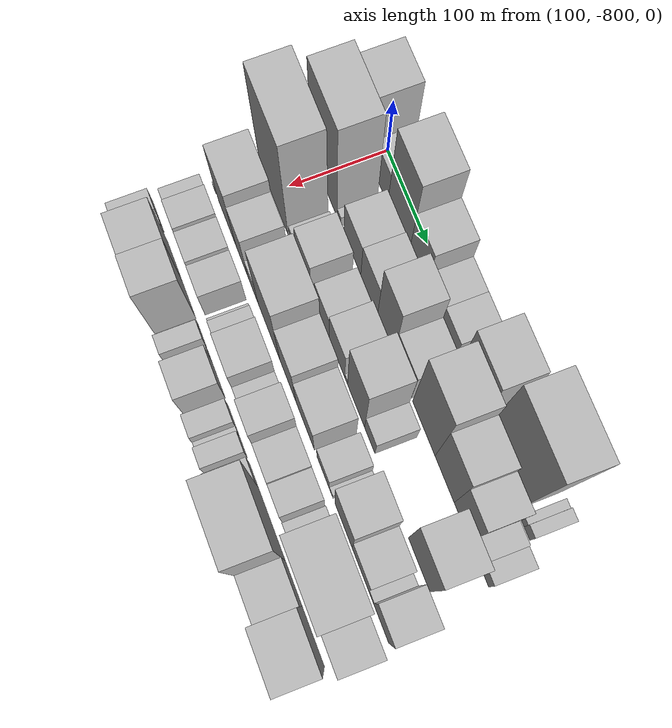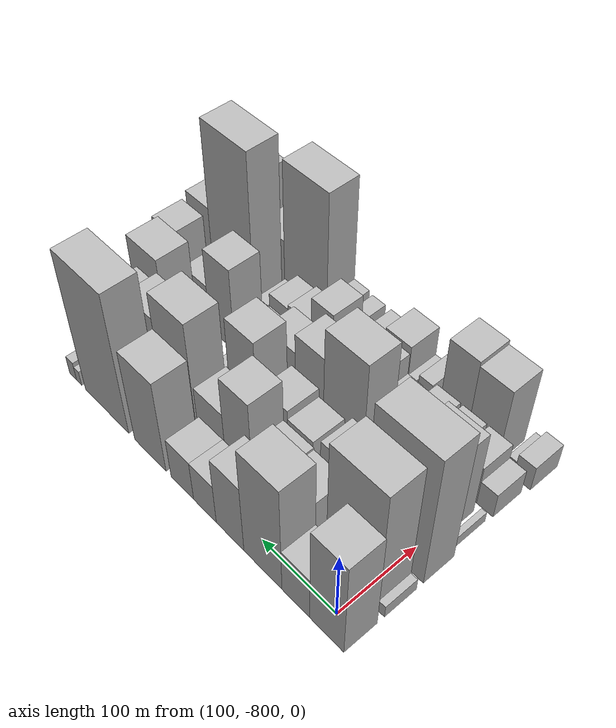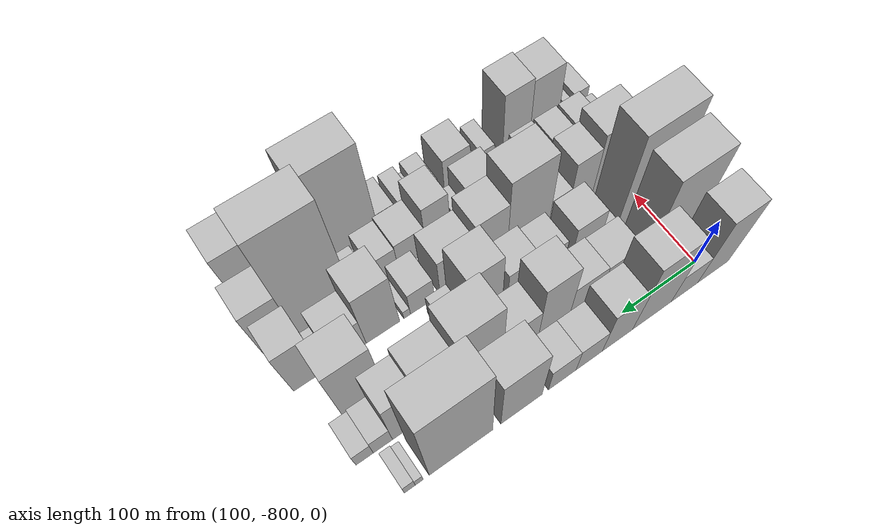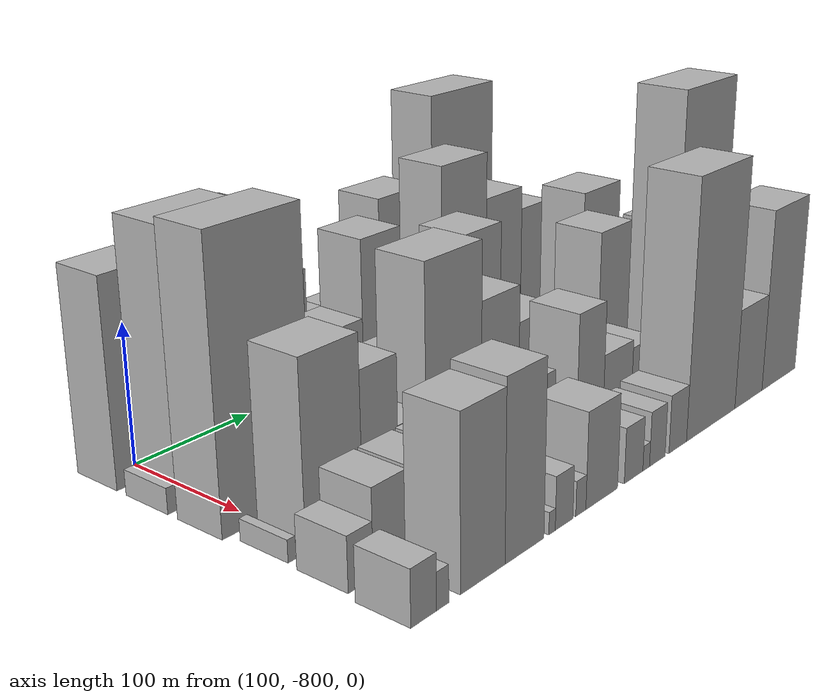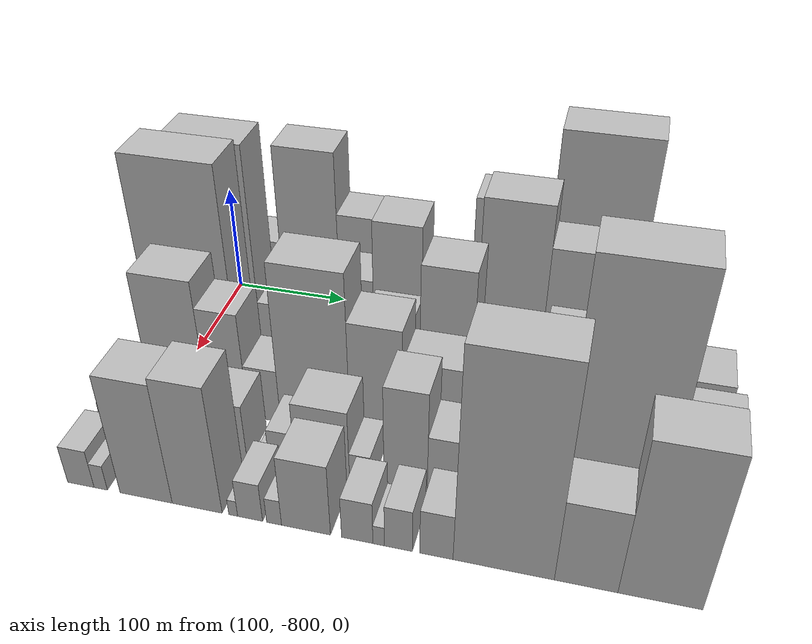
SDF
<sdf version="1.6">
 <world name="default">
  <model name="building_1">
   <static>1</static>
   <pose>100.0000 -808.2663 0 0.000000 0.000000 0.000000</pose>
   <link name="link">
    <pose>0 0 72.00 0 0 0</pose>
    <collision name="collision"><geometry><box><size>40.0000 43.4674 144.0000</size></box></geometry></collision>
    <visual name="visual">
     <cast_shadows>0</cast_shadows>
     <geometry><box><size>40.0000 43.4674 144.0000</size></box></geometry>
     <material>
      <script>
       <uri>model://HANNAS_wall/materials/scripts</uri>
       <uri>model://HANNAS_wall/materials/textures</uri>
       <name>vrc/HANNAS_wall</name>
      </script>
     </material>
    </visual>
   </link>
  </model>
  <model name="building_2">
   <static>1</static>
   <pose>100.0000 -768.1492 0 0.000000 0.000000 0.000000</pose>
   <link name="link">
    <pose>0 0 33.00 0 0 0</pose>
    <collision name="collision"><geometry><box><size>40.0000 36.7668 66.0000</size></box></geometry></collision>
    <visual name="visual">
     <cast_shadows>0</cast_shadows>
     <geometry><box><size>40.0000 36.7668 66.0000</size></box></geometry>
     <material>
      <script>
       <uri>model://HANNAS_wall/materials/scripts</uri>
       <uri>model://HANNAS_wall/materials/textures</uri>
       <name>vrc/HANNAS_wall</name>
      </script>
     </material>
    </visual>
   </link>
  </model>
  <model name="building_3">
   <static>1</static>
   <pose>100.0000 -723.4116 0 0.000000 0.000000 0.000000</pose>
   <link name="link">
    <pose>0 0 79.50 0 0 0</pose>
    <collision name="collision"><geometry><box><size>40.0000 52.7085 159.0000</size></box></geometry></collision>
    <visual name="visual">
     <cast_shadows>0</cast_shadows>
     <geometry><box><size>40.0000 52.7085 159.0000</size></box></geometry>
     <material>
      <script>
       <uri>model://HANNAS_wall/materials/scripts</uri>
       <uri>model://HANNAS_wall/materials/textures</uri>
       <name>vrc/HANNAS_wall</name>
      </script>
     </material>
    </visual>
   </link>
  </model>
  <model name="building_4">
   <static>1</static>
   <pose>100.0000 -677.0546 0 0.000000 0.000000 0.000000</pose>
   <link name="link">
    <pose>0 0 51.00 0 0 0</pose>
    <collision name="collision"><geometry><box><size>40.0000 40.0053 102.0000</size></box></geometry></collision>
    <visual name="visual">
     <cast_shadows>0</cast_shadows>
     <geometry><box><size>40.0000 40.0053 102.0000</size></box></geometry>
     <material>
      <script>
       <uri>model://HANNAS_wall/materials/scripts</uri>
       <uri>model://HANNAS_wall/materials/textures</uri>
       <name>vrc/HANNAS_wall</name>
      </script>
     </material>
    </visual>
   </link>
  </model>
  <model name="building_5">
   <static>1</static>
   <pose>100.0000 -640.0161 0 0.000000 0.000000 0.000000</pose>
   <link name="link">
    <pose>0 0 30.00 0 0 0</pose>
    <collision name="collision"><geometry><box><size>40.0000 34.0717 60.0000</size></box></geometry></collision>
    <visual name="visual">
     <cast_shadows>0</cast_shadows>
     <geometry><box><size>40.0000 34.0717 60.0000</size></box></geometry>
     <material>
      <script>
       <uri>model://HANNAS_wall/materials/scripts</uri>
       <uri>model://HANNAS_wall/materials/textures</uri>
       <name>vrc/HANNAS_wall</name>
      </script>
     </material>
    </visual>
   </link>
  </model>
  <model name="building_6">
   <static>1</static>
   <pose>100.0000 -605.4670 0 0.000000 0.000000 0.000000</pose>
   <link name="link">
    <pose>0 0 30.00 0 0 0</pose>
    <collision name="collision"><geometry><box><size>40.0000 35.0265 60.0000</size></box></geometry></collision>
    <visual name="visual">
     <cast_shadows>0</cast_shadows>
     <geometry><box><size>40.0000 35.0265 60.0000</size></box></geometry>
     <material>
      <script>
       <uri>model://HANNAS_wall/materials/scripts</uri>
       <uri>model://HANNAS_wall/materials/textures</uri>
       <name>vrc/HANNAS_wall</name>
      </script>
     </material>
    </visual>
   </link>
  </model>
  <model name="building_7">
   <static>1</static>
   <pose>100.0000 -554.4824 0 0.000000 0.000000 0.000000</pose>
   <link name="link">
    <pose>0 0 67.50 0 0 0</pose>
    <collision name="collision"><geometry><box><size>40.0000 50.9426 135.0000</size></box></geometry></collision>
    <visual name="visual">
     <cast_shadows>0</cast_shadows>
     <geometry><box><size>40.0000 50.9426 135.0000</size></box></geometry>
     <material>
      <script>
       <uri>model://HANNAS_wall/materials/scripts</uri>
       <uri>model://HANNAS_wall/materials/textures</uri>
       <name>vrc/HANNAS_wall</name>
      </script>
     </material>
    </visual>
   </link>
  </model>
  <model name="building_8">
   <static>1</static>
   <pose>100.0000 -481.4646 0 0.000000 0.000000 0.000000</pose>
   <link name="link">
    <pose>0 0 100.50 0 0 0</pose>
    <collision name="collision"><geometry><box><size>40.0000 75.0930 201.0000</size></box></geometry></collision>
    <visual name="visual">
     <cast_shadows>0</cast_shadows>
     <geometry><box><size>40.0000 75.0930 201.0000</size></box></geometry>
     <material>
      <script>
       <uri>model://HANNAS_wall/materials/scripts</uri>
       <uri>model://HANNAS_wall/materials/textures</uri>
       <name>vrc/HANNAS_wall</name>
      </script>
     </material>
    </visual>
   </link>
  </model>
  <model name="building_9">
   <static>1</static>
   <pose>100.0000 -432.3738 0 0.000000 0.000000 0.000000</pose>
   <link name="link">
    <pose>0 0 10.50 0 0 0</pose>
    <collision name="collision"><geometry><box><size>40.0000 9.0886 21.0000</size></box></geometry></collision>
    <visual name="visual">
     <cast_shadows>0</cast_shadows>
     <geometry><box><size>40.0000 9.0886 21.0000</size></box></geometry>
     <material>
      <script>
       <uri>model://HANNAS_wall/materials/scripts</uri>
       <uri>model://HANNAS_wall/materials/textures</uri>
       <name>vrc/HANNAS_wall</name>
      </script>
     </material>
    </visual>
   </link>
  </model>
  <model name="building_10">
   <static>1</static>
   <pose>100.0000 -421.5550 0 0.000000 0.000000 0.000000</pose>
   <link name="link">
    <pose>0 0 13.50 0 0 0</pose>
    <collision name="collision"><geometry><box><size>40.0000 12.5490 27.0000</size></box></geometry></collision>
    <visual name="visual">
     <cast_shadows>0</cast_shadows>
     <geometry><box><size>40.0000 12.5490 27.0000</size></box></geometry>
     <material>
      <script>
       <uri>model://HANNAS_wall/materials/scripts</uri>
       <uri>model://HANNAS_wall/materials/textures</uri>
       <name>vrc/HANNAS_wall</name>
      </script>
     </material>
    </visual>
   </link>
  </model>
  <model name="building_46">
   <static>1</static>
   <pose>149.0000 -825.7551 0 0.000000 0.000000 0.000000</pose>
   <link name="link">
    <pose>0 0 9.00 0 0 0</pose>
    <collision name="collision"><geometry><box><size>40.0000 8.4897 18.0000</size></box></geometry></collision>
    <visual name="visual">
     <cast_shadows>0</cast_shadows>
     <geometry><box><size>40.0000 8.4897 18.0000</size></box></geometry>
     <material>
      <script>
       <uri>model://HANNAS_wall/materials/scripts</uri>
       <uri>model://HANNAS_wall/materials/textures</uri>
       <name>vrc/HANNAS_wall</name>
      </script>
     </material>
    </visual>
   </link>
  </model>
  <model name="building_47">
   <static>1</static>
   <pose>149.0000 -787.9768 0 0.000000 0.000000 0.000000</pose>
   <link name="link">
    <pose>0 0 91.50 0 0 0</pose>
    <collision name="collision"><geometry><box><size>40.0000 67.0671 183.0000</size></box></geometry></collision>
    <visual name="visual">
     <cast_shadows>0</cast_shadows>
     <geometry><box><size>40.0000 67.0671 183.0000</size></box></geometry>
     <material>
      <script>
       <uri>model://HANNAS_wall/materials/scripts</uri>
       <uri>model://HANNAS_wall/materials/textures</uri>
       <name>vrc/HANNAS_wall</name>
      </script>
     </material>
    </visual>
   </link>
  </model>
  <model name="building_48">
   <static>1</static>
   <pose>149.0000 -749.7250 0 0.000000 0.000000 0.000000</pose>
   <link name="link">
    <pose>0 0 10.50 0 0 0</pose>
    <collision name="collision"><geometry><box><size>40.0000 9.4365 21.0000</size></box></geometry></collision>
    <visual name="visual">
     <cast_shadows>0</cast_shadows>
     <geometry><box><size>40.0000 9.4365 21.0000</size></box></geometry>
     <material>
      <script>
       <uri>model://HANNAS_wall/materials/scripts</uri>
       <uri>model://HANNAS_wall/materials/textures</uri>
       <name>vrc/HANNAS_wall</name>
      </script>
     </material>
    </visual>
   </link>
  </model>
  <model name="building_49">
   <static>1</static>
   <pose>149.0000 -715.4548 0 0.000000 0.000000 0.000000</pose>
   <link name="link">
    <pose>0 0 36.00 0 0 0</pose>
    <collision name="collision"><geometry><box><size>40.0000 43.1039 72.0000</size></box></geometry></collision>
    <visual name="visual">
     <cast_shadows>0</cast_shadows>
     <geometry><box><size>40.0000 43.1039 72.0000</size></box></geometry>
     <material>
      <script>
       <uri>model://HANNAS_wall/materials/scripts</uri>
       <uri>model://HANNAS_wall/materials/textures</uri>
       <name>vrc/HANNAS_wall</name>
      </script>
     </material>
    </visual>
   </link>
  </model>
  <model name="building_50">
   <static>1</static>
   <pose>149.0000 -673.1103 0 0.000000 0.000000 0.000000</pose>
   <link name="link">
    <pose>0 0 37.50 0 0 0</pose>
    <collision name="collision"><geometry><box><size>40.0000 41.5851 75.0000</size></box></geometry></collision>
    <visual name="visual">
     <cast_shadows>0</cast_shadows>
     <geometry><box><size>40.0000 41.5851 75.0000</size></box></geometry>
     <material>
      <script>
       <uri>model://HANNAS_wall/materials/scripts</uri>
       <uri>model://HANNAS_wall/materials/textures</uri>
       <name>vrc/HANNAS_wall</name>
      </script>
     </material>
    </visual>
   </link>
  </model>
  <model name="building_51">
   <static>1</static>
   <pose>149.0000 -632.1052 0 0.000000 0.000000 0.000000</pose>
   <link name="link">
    <pose>0 0 66.00 0 0 0</pose>
    <collision name="collision"><geometry><box><size>40.0000 40.4250 132.0000</size></box></geometry></collision>
    <visual name="visual">
     <cast_shadows>0</cast_shadows>
     <geometry><box><size>40.0000 40.4250 132.0000</size></box></geometry>
     <material>
      <script>
       <uri>model://HANNAS_wall/materials/scripts</uri>
       <uri>model://HANNAS_wall/materials/textures</uri>
       <name>vrc/HANNAS_wall</name>
      </script>
     </material>
    </visual>
   </link>
  </model>
  <model name="building_52">
   <static>1</static>
   <pose>149.0000 -590.7707 0 0.000000 0.000000 0.000000</pose>
   <link name="link">
    <pose>0 0 39.00 0 0 0</pose>
    <collision name="collision"><geometry><box><size>40.0000 42.2440 78.0000</size></box></geometry></collision>
    <visual name="visual">
     <cast_shadows>0</cast_shadows>
     <geometry><box><size>40.0000 42.2440 78.0000</size></box></geometry>
     <material>
      <script>
       <uri>model://HANNAS_wall/materials/scripts</uri>
       <uri>model://HANNAS_wall/materials/textures</uri>
       <name>vrc/HANNAS_wall</name>
      </script>
     </material>
    </visual>
   </link>
  </model>
  <model name="building_53">
   <static>1</static>
   <pose>149.0000 -540.1010 0 0.000000 0.000000 0.000000</pose>
   <link name="link">
    <pose>0 0 82.50 0 0 0</pose>
    <collision name="collision"><geometry><box><size>40.0000 53.0954 165.0000</size></box></geometry></collision>
    <visual name="visual">
     <cast_shadows>0</cast_shadows>
     <geometry><box><size>40.0000 53.0954 165.0000</size></box></geometry>
     <material>
      <script>
       <uri>model://HANNAS_wall/materials/scripts</uri>
       <uri>model://HANNAS_wall/materials/textures</uri>
       <name>vrc/HANNAS_wall</name>
      </script>
     </material>
    </visual>
   </link>
  </model>
  <model name="building_54">
   <static>1</static>
   <pose>149.0000 -491.4233 0 0.000000 0.000000 0.000000</pose>
   <link name="link">
    <pose>0 0 64.50 0 0 0</pose>
    <collision name="collision"><geometry><box><size>40.0000 44.2600 129.0000</size></box></geometry></collision>
    <visual name="visual">
     <cast_shadows>0</cast_shadows>
     <geometry><box><size>40.0000 44.2600 129.0000</size></box></geometry>
     <material>
      <script>
       <uri>model://HANNAS_wall/materials/scripts</uri>
       <uri>model://HANNAS_wall/materials/textures</uri>
       <name>vrc/HANNAS_wall</name>
      </script>
     </material>
    </visual>
   </link>
  </model>
  <model name="building_55">
   <static>1</static>
   <pose>149.0000 -451.5261 0 0.000000 0.000000 0.000000</pose>
   <link name="link">
    <pose>0 0 55.50 0 0 0</pose>
    <collision name="collision"><geometry><box><size>40.0000 35.5344 111.0000</size></box></geometry></collision>
    <visual name="visual">
     <cast_shadows>0</cast_shadows>
     <geometry><box><size>40.0000 35.5344 111.0000</size></box></geometry>
     <material>
      <script>
       <uri>model://HANNAS_wall/materials/scripts</uri>
       <uri>model://HANNAS_wall/materials/textures</uri>
       <name>vrc/HANNAS_wall</name>
      </script>
     </material>
    </visual>
   </link>
  </model>
  <model name="building_56">
   <static>1</static>
   <pose>149.0000 -422.6835 0 0.000000 0.000000 0.000000</pose>
   <link name="link">
    <pose>0 0 21.00 0 0 0</pose>
    <collision name="collision"><geometry><box><size>40.0000 22.1510 42.0000</size></box></geometry></collision>
    <visual name="visual">
     <cast_shadows>0</cast_shadows>
     <geometry><box><size>40.0000 22.1510 42.0000</size></box></geometry>
     <material>
      <script>
       <uri>model://HANNAS_wall/materials/scripts</uri>
       <uri>model://HANNAS_wall/materials/textures</uri>
       <name>vrc/HANNAS_wall</name>
      </script>
     </material>
    </visual>
   </link>
  </model>
  <model name="building_57">
   <static>1</static>
   <pose>149.0000 -401.6400 0 0.000000 0.000000 0.000000</pose>
   <link name="link">
    <pose>0 0 18.00 0 0 0</pose>
    <collision name="collision"><geometry><box><size>40.0000 19.9360 36.0000</size></box></geometry></collision>
    <visual name="visual">
     <cast_shadows>0</cast_shadows>
     <geometry><box><size>40.0000 19.9360 36.0000</size></box></geometry>
     <material>
      <script>
       <uri>model://HANNAS_wall/materials/scripts</uri>
       <uri>model://HANNAS_wall/materials/textures</uri>
       <name>vrc/HANNAS_wall</name>
      </script>
     </material>
    </visual>
   </link>
  </model>
  <model name="building_97">
   <static>1</static>
   <pose>198.0000 -792.3456 0 0.000000 0.000000 0.000000</pose>
   <link name="link">
    <pose>0 0 96.00 0 0 0</pose>
    <collision name="collision"><geometry><box><size>40.0000 75.3089 192.0000</size></box></geometry></collision>
    <visual name="visual">
     <cast_shadows>0</cast_shadows>
     <geometry><box><size>40.0000 75.3089 192.0000</size></box></geometry>
     <material>
      <script>
       <uri>model://HANNAS_wall/materials/scripts</uri>
       <uri>model://HANNAS_wall/materials/textures</uri>
       <name>vrc/HANNAS_wall</name>
      </script>
     </material>
    </visual>
   </link>
  </model>
  <model name="building_98">
   <static>1</static>
   <pose>198.0000 -741.5462 0 0.000000 0.000000 0.000000</pose>
   <link name="link">
    <pose>0 0 16.50 0 0 0</pose>
    <collision name="collision"><geometry><box><size>40.0000 18.2899 33.0000</size></box></geometry></collision>
    <visual name="visual">
     <cast_shadows>0</cast_shadows>
     <geometry><box><size>40.0000 18.2899 33.0000</size></box></geometry>
     <material>
      <script>
       <uri>model://HANNAS_wall/materials/scripts</uri>
       <uri>model://HANNAS_wall/materials/textures</uri>
       <name>vrc/HANNAS_wall</name>
      </script>
     </material>
    </visual>
   </link>
  </model>
  <model name="building_99">
   <static>1</static>
   <pose>198.0000 -712.7181 0 0.000000 0.000000 0.000000</pose>
   <link name="link">
    <pose>0 0 37.50 0 0 0</pose>
    <collision name="collision"><geometry><box><size>40.0000 39.3663 75.0000</size></box></geometry></collision>
    <visual name="visual">
     <cast_shadows>0</cast_shadows>
     <geometry><box><size>40.0000 39.3663 75.0000</size></box></geometry>
     <material>
      <script>
       <uri>model://HANNAS_wall/materials/scripts</uri>
       <uri>model://HANNAS_wall/materials/textures</uri>
       <name>vrc/HANNAS_wall</name>
      </script>
     </material>
    </visual>
   </link>
  </model>
  <model name="building_100">
   <static>1</static>
   <pose>198.0000 -665.2020 0 0.000000 0.000000 0.000000</pose>
   <link name="link">
    <pose>0 0 31.50 0 0 0</pose>
    <collision name="collision"><geometry><box><size>40.0000 35.6659 63.0000</size></box></geometry></collision>
    <visual name="visual">
     <cast_shadows>0</cast_shadows>
     <geometry><box><size>40.0000 35.6659 63.0000</size></box></geometry>
     <material>
      <script>
       <uri>model://HANNAS_wall/materials/scripts</uri>
       <uri>model://HANNAS_wall/materials/textures</uri>
       <name>vrc/HANNAS_wall</name>
      </script>
     </material>
    </visual>
   </link>
  </model>
  <model name="building_101">
   <static>1</static>
   <pose>198.0000 -628.0444 0 0.000000 0.000000 0.000000</pose>
   <link name="link">
    <pose>0 0 37.50 0 0 0</pose>
    <collision name="collision"><geometry><box><size>40.0000 38.6493 75.0000</size></box></geometry></collision>
    <visual name="visual">
     <cast_shadows>0</cast_shadows>
     <geometry><box><size>40.0000 38.6493 75.0000</size></box></geometry>
     <material>
      <script>
       <uri>model://HANNAS_wall/materials/scripts</uri>
       <uri>model://HANNAS_wall/materials/textures</uri>
       <name>vrc/HANNAS_wall</name>
      </script>
     </material>
    </visual>
   </link>
  </model>
  <model name="building_102">
   <static>1</static>
   <pose>198.0000 -605.2916 0 0.000000 0.000000 0.000000</pose>
   <link name="link">
    <pose>0 0 7.50 0 0 0</pose>
    <collision name="collision"><geometry><box><size>40.0000 6.8563 15.0000</size></box></geometry></collision>
    <visual name="visual">
     <cast_shadows>0</cast_shadows>
     <geometry><box><size>40.0000 6.8563 15.0000</size></box></geometry>
     <material>
      <script>
       <uri>model://HANNAS_wall/materials/scripts</uri>
       <uri>model://HANNAS_wall/materials/textures</uri>
       <name>vrc/HANNAS_wall</name>
      </script>
     </material>
    </visual>
   </link>
  </model>
  <model name="building_103">
   <static>1</static>
   <pose>198.0000 -580.9486 0 0.000000 0.000000 0.000000</pose>
   <link name="link">
    <pose>0 0 66.00 0 0 0</pose>
    <collision name="collision"><geometry><box><size>40.0000 41.8298 132.0000</size></box></geometry></collision>
    <visual name="visual">
     <cast_shadows>0</cast_shadows>
     <geometry><box><size>40.0000 41.8298 132.0000</size></box></geometry>
     <material>
      <script>
       <uri>model://HANNAS_wall/materials/scripts</uri>
       <uri>model://HANNAS_wall/materials/textures</uri>
       <name>vrc/HANNAS_wall</name>
      </script>
     </material>
    </visual>
   </link>
  </model>
  <model name="building_104">
   <static>1</static>
   <pose>198.0000 -547.4673 0 0.000000 0.000000 0.000000</pose>
   <link name="link">
    <pose>0 0 22.50 0 0 0</pose>
    <collision name="collision"><geometry><box><size>40.0000 25.1329 45.0000</size></box></geometry></collision>
    <visual name="visual">
     <cast_shadows>0</cast_shadows>
     <geometry><box><size>40.0000 25.1329 45.0000</size></box></geometry>
     <material>
      <script>
       <uri>model://HANNAS_wall/materials/scripts</uri>
       <uri>model://HANNAS_wall/materials/textures</uri>
       <name>vrc/HANNAS_wall</name>
      </script>
     </material>
    </visual>
   </link>
  </model>
  <model name="building_105">
   <static>1</static>
   <pose>198.0000 -430.9025 0 0.000000 0.000000 0.000000</pose>
   <link name="link">
    <pose>0 0 64.50 0 0 0</pose>
    <collision name="collision"><geometry><box><size>40.0000 49.3322 129.0000</size></box></geometry></collision>
    <visual name="visual">
     <cast_shadows>0</cast_shadows>
     <geometry><box><size>40.0000 49.3322 129.0000</size></box></geometry>
     <material>
      <script>
       <uri>model://HANNAS_wall/materials/scripts</uri>
       <uri>model://HANNAS_wall/materials/textures</uri>
       <name>vrc/HANNAS_wall</name>
      </script>
     </material>
    </visual>
   </link>
  </model>
  <model name="building_143">
   <static>1</static>
   <pose>247.0000 -820.7951 0 0.000000 0.000000 0.000000</pose>
   <link name="link">
    <pose>0 0 7.50 0 0 0</pose>
    <collision name="collision"><geometry><box><size>40.0000 6.4097 15.0000</size></box></geometry></collision>
    <visual name="visual">
     <cast_shadows>0</cast_shadows>
     <geometry><box><size>40.0000 6.4097 15.0000</size></box></geometry>
     <material>
      <script>
       <uri>model://HANNAS_wall/materials/scripts</uri>
       <uri>model://HANNAS_wall/materials/textures</uri>
       <name>vrc/HANNAS_wall</name>
      </script>
     </material>
    </visual>
   </link>
  </model>
  <model name="building_144">
   <static>1</static>
   <pose>247.0000 -785.1704 0 0.000000 0.000000 0.000000</pose>
   <link name="link">
    <pose>0 0 61.50 0 0 0</pose>
    <collision name="collision"><geometry><box><size>40.0000 48.8398 123.0000</size></box></geometry></collision>
    <visual name="visual">
     <cast_shadows>0</cast_shadows>
     <geometry><box><size>40.0000 48.8398 123.0000</size></box></geometry>
     <material>
      <script>
       <uri>model://HANNAS_wall/materials/scripts</uri>
       <uri>model://HANNAS_wall/materials/textures</uri>
       <name>vrc/HANNAS_wall</name>
      </script>
     </material>
    </visual>
   </link>
  </model>
  <model name="building_145">
   <static>1</static>
   <pose>247.0000 -744.2695 0 0.000000 0.000000 0.000000</pose>
   <link name="link">
    <pose>0 0 49.50 0 0 0</pose>
    <collision name="collision"><geometry><box><size>40.0000 32.9618 99.0000</size></box></geometry></collision>
    <visual name="visual">
     <cast_shadows>0</cast_shadows>
     <geometry><box><size>40.0000 32.9618 99.0000</size></box></geometry>
     <material>
      <script>
       <uri>model://HANNAS_wall/materials/scripts</uri>
       <uri>model://HANNAS_wall/materials/textures</uri>
       <name>vrc/HANNAS_wall</name>
      </script>
     </material>
    </visual>
   </link>
  </model>
  <model name="building_146">
   <static>1</static>
   <pose>247.0000 -714.4399 0 0.000000 0.000000 0.000000</pose>
   <link name="link">
    <pose>0 0 25.50 0 0 0</pose>
    <collision name="collision"><geometry><box><size>40.0000 26.6975 51.0000</size></box></geometry></collision>
    <visual name="visual">
     <cast_shadows>0</cast_shadows>
     <geometry><box><size>40.0000 26.6975 51.0000</size></box></geometry>
     <material>
      <script>
       <uri>model://HANNAS_wall/materials/scripts</uri>
       <uri>model://HANNAS_wall/materials/textures</uri>
       <name>vrc/HANNAS_wall</name>
      </script>
     </material>
    </visual>
   </link>
  </model>
  <model name="building_147">
   <static>1</static>
   <pose>247.0000 -672.7868 0 0.000000 0.000000 0.000000</pose>
   <link name="link">
    <pose>0 0 75.00 0 0 0</pose>
    <collision name="collision"><geometry><box><size>40.0000 56.6085 150.0000</size></box></geometry></collision>
    <visual name="visual">
     <cast_shadows>0</cast_shadows>
     <geometry><box><size>40.0000 56.6085 150.0000</size></box></geometry>
     <material>
      <script>
       <uri>model://HANNAS_wall/materials/scripts</uri>
       <uri>model://HANNAS_wall/materials/textures</uri>
       <name>vrc/HANNAS_wall</name>
      </script>
     </material>
    </visual>
   </link>
  </model>
  <model name="building_148">
   <static>1</static>
   <pose>247.0000 -623.9160 0 0.000000 0.000000 0.000000</pose>
   <link name="link">
    <pose>0 0 54.00 0 0 0</pose>
    <collision name="collision"><geometry><box><size>40.0000 41.1330 108.0000</size></box></geometry></collision>
    <visual name="visual">
     <cast_shadows>0</cast_shadows>
     <geometry><box><size>40.0000 41.1330 108.0000</size></box></geometry>
     <material>
      <script>
       <uri>model://HANNAS_wall/materials/scripts</uri>
       <uri>model://HANNAS_wall/materials/textures</uri>
       <name>vrc/HANNAS_wall</name>
      </script>
     </material>
    </visual>
   </link>
  </model>
  <model name="building_149">
   <static>1</static>
   <pose>247.0000 -580.2338 0 0.000000 0.000000 0.000000</pose>
   <link name="link">
    <pose>0 0 40.50 0 0 0</pose>
    <collision name="collision"><geometry><box><size>40.0000 46.2314 81.0000</size></box></geometry></collision>
    <visual name="visual">
     <cast_shadows>0</cast_shadows>
     <geometry><box><size>40.0000 46.2314 81.0000</size></box></geometry>
     <material>
      <script>
       <uri>model://HANNAS_wall/materials/scripts</uri>
       <uri>model://HANNAS_wall/materials/textures</uri>
       <name>vrc/HANNAS_wall</name>
      </script>
     </material>
    </visual>
   </link>
  </model>
  <model name="building_150">
   <static>1</static>
   <pose>247.0000 -534.8901 0 0.000000 0.000000 0.000000</pose>
   <link name="link">
    <pose>0 0 25.50 0 0 0</pose>
    <collision name="collision"><geometry><box><size>40.0000 30.4558 51.0000</size></box></geometry></collision>
    <visual name="visual">
     <cast_shadows>0</cast_shadows>
     <geometry><box><size>40.0000 30.4558 51.0000</size></box></geometry>
     <material>
      <script>
       <uri>model://HANNAS_wall/materials/scripts</uri>
       <uri>model://HANNAS_wall/materials/textures</uri>
       <name>vrc/HANNAS_wall</name>
      </script>
     </material>
    </visual>
   </link>
  </model>
  <model name="building_151">
   <static>1</static>
   <pose>247.0000 -515.4645 0 0.000000 0.000000 0.000000</pose>
   <link name="link">
    <pose>0 0 9.00 0 0 0</pose>
    <collision name="collision"><geometry><box><size>40.0000 8.3954 18.0000</size></box></geometry></collision>
    <visual name="visual">
     <cast_shadows>0</cast_shadows>
     <geometry><box><size>40.0000 8.3954 18.0000</size></box></geometry>
     <material>
      <script>
       <uri>model://HANNAS_wall/materials/scripts</uri>
       <uri>model://HANNAS_wall/materials/textures</uri>
       <name>vrc/HANNAS_wall</name>
      </script>
     </material>
    </visual>
   </link>
  </model>
  <model name="building_152">
   <static>1</static>
   <pose>247.0000 -485.7428 0 0.000000 0.000000 0.000000</pose>
   <link name="link">
    <pose>0 0 60.00 0 0 0</pose>
    <collision name="collision"><geometry><box><size>40.0000 41.0480 120.0000</size></box></geometry></collision>
    <visual name="visual">
     <cast_shadows>0</cast_shadows>
     <geometry><box><size>40.0000 41.0480 120.0000</size></box></geometry>
     <material>
      <script>
       <uri>model://HANNAS_wall/materials/scripts</uri>
       <uri>model://HANNAS_wall/materials/textures</uri>
       <name>vrc/HANNAS_wall</name>
      </script>
     </material>
    </visual>
   </link>
  </model>
  <model name="building_153">
   <static>1</static>
   <pose>247.0000 -445.6171 0 0.000000 0.000000 0.000000</pose>
   <link name="link">
    <pose>0 0 33.00 0 0 0</pose>
    <collision name="collision"><geometry><box><size>40.0000 39.2034 66.0000</size></box></geometry></collision>
    <visual name="visual">
     <cast_shadows>0</cast_shadows>
     <geometry><box><size>40.0000 39.2034 66.0000</size></box></geometry>
     <material>
      <script>
       <uri>model://HANNAS_wall/materials/scripts</uri>
       <uri>model://HANNAS_wall/materials/textures</uri>
       <name>vrc/HANNAS_wall</name>
      </script>
     </material>
    </visual>
   </link>
  </model>
  <model name="building_154">
   <static>1</static>
   <pose>247.0000 -420.3716 0 0.000000 0.000000 0.000000</pose>
   <link name="link">
    <pose>0 0 12.00 0 0 0</pose>
    <collision name="collision"><geometry><box><size>40.0000 11.2876 24.0000</size></box></geometry></collision>
    <visual name="visual">
     <cast_shadows>0</cast_shadows>
     <geometry><box><size>40.0000 11.2876 24.0000</size></box></geometry>
     <material>
      <script>
       <uri>model://HANNAS_wall/materials/scripts</uri>
       <uri>model://HANNAS_wall/materials/textures</uri>
       <name>vrc/HANNAS_wall</name>
      </script>
     </material>
    </visual>
   </link>
  </model>
  <model name="building_155">
   <static>1</static>
   <pose>247.0000 -397.0033 0 0.000000 0.000000 0.000000</pose>
   <link name="link">
    <pose>0 0 52.50 0 0 0</pose>
    <collision name="collision"><geometry><box><size>40.0000 35.4490 105.0000</size></box></geometry></collision>
    <visual name="visual">
     <cast_shadows>0</cast_shadows>
     <geometry><box><size>40.0000 35.4490 105.0000</size></box></geometry>
     <material>
      <script>
       <uri>model://HANNAS_wall/materials/scripts</uri>
       <uri>model://HANNAS_wall/materials/textures</uri>
       <name>vrc/HANNAS_wall</name>
      </script>
     </material>
    </visual>
   </link>
  </model>
  <model name="building_197">
   <static>1</static>
   <pose>296.0000 -815.7249 0 0.000000 0.000000 0.000000</pose>
   <link name="link">
    <pose>0 0 18.00 0 0 0</pose>
    <collision name="collision"><geometry><box><size>40.0000 20.5503 36.0000</size></box></geometry></collision>
    <visual name="visual">
     <cast_shadows>0</cast_shadows>
     <geometry><box><size>40.0000 20.5503 36.0000</size></box></geometry>
     <material>
      <script>
       <uri>model://HANNAS_wall/materials/scripts</uri>
       <uri>model://HANNAS_wall/materials/textures</uri>
       <name>vrc/HANNAS_wall</name>
      </script>
     </material>
    </visual>
   </link>
  </model>
  <model name="building_198">
   <static>1</static>
   <pose>296.0000 -790.8034 0 0.000000 0.000000 0.000000</pose>
   <link name="link">
    <pose>0 0 28.50 0 0 0</pose>
    <collision name="collision"><geometry><box><size>40.0000 29.2927 57.0000</size></box></geometry></collision>
    <visual name="visual">
     <cast_shadows>0</cast_shadows>
     <geometry><box><size>40.0000 29.2927 57.0000</size></box></geometry>
     <material>
      <script>
       <uri>model://HANNAS_wall/materials/scripts</uri>
       <uri>model://HANNAS_wall/materials/textures</uri>
       <name>vrc/HANNAS_wall</name>
      </script>
     </material>
    </visual>
   </link>
  </model>
  <model name="building_199">
   <static>1</static>
   <pose>296.0000 -758.1208 0 0.000000 0.000000 0.000000</pose>
   <link name="link">
    <pose>0 0 28.50 0 0 0</pose>
    <collision name="collision"><geometry><box><size>40.0000 30.0726 57.0000</size></box></geometry></collision>
    <visual name="visual">
     <cast_shadows>0</cast_shadows>
     <geometry><box><size>40.0000 30.0726 57.0000</size></box></geometry>
     <material>
      <script>
       <uri>model://HANNAS_wall/materials/scripts</uri>
       <uri>model://HANNAS_wall/materials/textures</uri>
       <name>vrc/HANNAS_wall</name>
      </script>
     </material>
    </visual>
   </link>
  </model>
  <model name="building_200">
   <static>1</static>
   <pose>296.0000 -724.8004 0 0.000000 0.000000 0.000000</pose>
   <link name="link">
    <pose>0 0 28.50 0 0 0</pose>
    <collision name="collision"><geometry><box><size>40.0000 30.5681 57.0000</size></box></geometry></collision>
    <visual name="visual">
     <cast_shadows>0</cast_shadows>
     <geometry><box><size>40.0000 30.5681 57.0000</size></box></geometry>
     <material>
      <script>
       <uri>model://HANNAS_wall/materials/scripts</uri>
       <uri>model://HANNAS_wall/materials/textures</uri>
       <name>vrc/HANNAS_wall</name>
      </script>
     </material>
    </visual>
   </link>
  </model>
  <model name="building_201">
   <static>1</static>
   <pose>296.0000 -696.3324 0 0.000000 0.000000 0.000000</pose>
   <link name="link">
    <pose>0 0 9.00 0 0 0</pose>
    <collision name="collision"><geometry><box><size>40.0000 8.3680 18.0000</size></box></geometry></collision>
    <visual name="visual">
     <cast_shadows>0</cast_shadows>
     <geometry><box><size>40.0000 8.3680 18.0000</size></box></geometry>
     <material>
      <script>
       <uri>model://HANNAS_wall/materials/scripts</uri>
       <uri>model://HANNAS_wall/materials/textures</uri>
       <name>vrc/HANNAS_wall</name>
      </script>
     </material>
    </visual>
   </link>
  </model>
  <model name="building_202">
   <static>1</static>
   <pose>296.0000 -681.9591 0 0.000000 0.000000 0.000000</pose>
   <link name="link">
    <pose>0 0 19.50 0 0 0</pose>
    <collision name="collision"><geometry><box><size>40.0000 20.3785 39.0000</size></box></geometry></collision>
    <visual name="visual">
     <cast_shadows>0</cast_shadows>
     <geometry><box><size>40.0000 20.3785 39.0000</size></box></geometry>
     <material>
      <script>
       <uri>model://HANNAS_wall/materials/scripts</uri>
       <uri>model://HANNAS_wall/materials/textures</uri>
       <name>vrc/HANNAS_wall</name>
      </script>
     </material>
    </visual>
   </link>
  </model>
  <model name="building_203">
   <static>1</static>
   <pose>296.0000 -651.0860 0 0.000000 0.000000 0.000000</pose>
   <link name="link">
    <pose>0 0 34.50 0 0 0</pose>
    <collision name="collision"><geometry><box><size>40.0000 41.3678 69.0000</size></box></geometry></collision>
    <visual name="visual">
     <cast_shadows>0</cast_shadows>
     <geometry><box><size>40.0000 41.3678 69.0000</size></box></geometry>
     <material>
      <script>
       <uri>model://HANNAS_wall/materials/scripts</uri>
       <uri>model://HANNAS_wall/materials/textures</uri>
       <name>vrc/HANNAS_wall</name>
      </script>
     </material>
    </visual>
   </link>
  </model>
  <model name="building_204">
   <static>1</static>
   <pose>296.0000 -622.5141 0 0.000000 0.000000 0.000000</pose>
   <link name="link">
    <pose>0 0 15.00 0 0 0</pose>
    <collision name="collision"><geometry><box><size>40.0000 15.7759 30.0000</size></box></geometry></collision>
    <visual name="visual">
     <cast_shadows>0</cast_shadows>
     <geometry><box><size>40.0000 15.7759 30.0000</size></box></geometry>
     <material>
      <script>
       <uri>model://HANNAS_wall/materials/scripts</uri>
       <uri>model://HANNAS_wall/materials/textures</uri>
       <name>vrc/HANNAS_wall</name>
      </script>
     </material>
    </visual>
   </link>
  </model>
  <model name="building_205">
   <static>1</static>
   <pose>296.0000 -588.7622 0 0.000000 0.000000 0.000000</pose>
   <link name="link">
    <pose>0 0 49.50 0 0 0</pose>
    <collision name="collision"><geometry><box><size>40.0000 31.7278 99.0000</size></box></geometry></collision>
    <visual name="visual">
     <cast_shadows>0</cast_shadows>
     <geometry><box><size>40.0000 31.7278 99.0000</size></box></geometry>
     <material>
      <script>
       <uri>model://HANNAS_wall/materials/scripts</uri>
       <uri>model://HANNAS_wall/materials/textures</uri>
       <name>vrc/HANNAS_wall</name>
      </script>
     </material>
    </visual>
   </link>
  </model>
  <model name="building_206">
   <static>1</static>
   <pose>296.0000 -554.9461 0 0.000000 0.000000 0.000000</pose>
   <link name="link">
    <pose>0 0 30.00 0 0 0</pose>
    <collision name="collision"><geometry><box><size>40.0000 35.9045 60.0000</size></box></geometry></collision>
    <visual name="visual">
     <cast_shadows>0</cast_shadows>
     <geometry><box><size>40.0000 35.9045 60.0000</size></box></geometry>
     <material>
      <script>
       <uri>model://HANNAS_wall/materials/scripts</uri>
       <uri>model://HANNAS_wall/materials/textures</uri>
       <name>vrc/HANNAS_wall</name>
      </script>
     </material>
    </visual>
   </link>
  </model>
  <model name="building_207">
   <static>1</static>
   <pose>296.0000 -522.3073 0 0.000000 0.000000 0.000000</pose>
   <link name="link">
    <pose>0 0 27.00 0 0 0</pose>
    <collision name="collision"><geometry><box><size>40.0000 29.3731 54.0000</size></box></geometry></collision>
    <visual name="visual">
     <cast_shadows>0</cast_shadows>
     <geometry><box><size>40.0000 29.3731 54.0000</size></box></geometry>
     <material>
      <script>
       <uri>model://HANNAS_wall/materials/scripts</uri>
       <uri>model://HANNAS_wall/materials/textures</uri>
       <name>vrc/HANNAS_wall</name>
      </script>
     </material>
    </visual>
   </link>
  </model>
  <model name="building_208">
   <static>1</static>
   <pose>296.0000 -495.9714 0 0.000000 0.000000 0.000000</pose>
   <link name="link">
    <pose>0 0 16.50 0 0 0</pose>
    <collision name="collision"><geometry><box><size>40.0000 17.2987 33.0000</size></box></geometry></collision>
    <visual name="visual">
     <cast_shadows>0</cast_shadows>
     <geometry><box><size>40.0000 17.2987 33.0000</size></box></geometry>
     <material>
      <script>
       <uri>model://HANNAS_wall/materials/scripts</uri>
       <uri>model://HANNAS_wall/materials/textures</uri>
       <name>vrc/HANNAS_wall</name>
      </script>
     </material>
    </visual>
   </link>
  </model>
  <model name="building_209">
   <static>1</static>
   <pose>296.0000 -446.6043 0 0.000000 0.000000 0.000000</pose>
   <link name="link">
    <pose>0 0 112.50 0 0 0</pose>
    <collision name="collision"><geometry><box><size>40.0000 69.4356 225.0000</size></box></geometry></collision>
    <visual name="visual">
     <cast_shadows>0</cast_shadows>
     <geometry><box><size>40.0000 69.4356 225.0000</size></box></geometry>
     <material>
      <script>
       <uri>model://HANNAS_wall/materials/scripts</uri>
       <uri>model://HANNAS_wall/materials/textures</uri>
       <name>vrc/HANNAS_wall</name>
      </script>
     </material>
    </visual>
   </link>
  </model>
  <model name="building_210">
   <static>1</static>
   <pose>296.0000 -392.9243 0 0.000000 0.000000 0.000000</pose>
   <link name="link">
    <pose>0 0 54.00 0 0 0</pose>
    <collision name="collision"><geometry><box><size>40.0000 37.9243 108.0000</size></box></geometry></collision>
    <visual name="visual">
     <cast_shadows>0</cast_shadows>
     <geometry><box><size>40.0000 37.9243 108.0000</size></box></geometry>
     <material>
      <script>
       <uri>model://HANNAS_wall/materials/scripts</uri>
       <uri>model://HANNAS_wall/materials/textures</uri>
       <name>vrc/HANNAS_wall</name>
      </script>
     </material>
    </visual>
   </link>
  </model>
  <model name="building_246">
   <static>1</static>
   <pose>345.0000 -819.4158 0 0.000000 0.000000 0.000000</pose>
   <link name="link">
    <pose>0 0 18.00 0 0 0</pose>
    <collision name="collision"><geometry><box><size>40.0000 21.1685 36.0000</size></box></geometry></collision>
    <visual name="visual">
     <cast_shadows>0</cast_shadows>
     <geometry><box><size>40.0000 21.1685 36.0000</size></box></geometry>
     <material>
      <script>
       <uri>model://HANNAS_wall/materials/scripts</uri>
       <uri>model://HANNAS_wall/materials/textures</uri>
       <name>vrc/HANNAS_wall</name>
      </script>
     </material>
    </visual>
   </link>
  </model>
  <model name="building_247">
   <static>1</static>
   <pose>345.0000 -803.5521 0 0.000000 0.000000 0.000000</pose>
   <link name="link">
    <pose>0 0 12.00 0 0 0</pose>
    <collision name="collision"><geometry><box><size>40.0000 10.5587 24.0000</size></box></geometry></collision>
    <visual name="visual">
     <cast_shadows>0</cast_shadows>
     <geometry><box><size>40.0000 10.5587 24.0000</size></box></geometry>
     <material>
      <script>
       <uri>model://HANNAS_wall/materials/scripts</uri>
       <uri>model://HANNAS_wall/materials/textures</uri>
       <name>vrc/HANNAS_wall</name>
      </script>
     </material>
    </visual>
   </link>
  </model>
  <model name="building_248">
   <static>1</static>
   <pose>345.0000 -767.9281 0 0.000000 0.000000 0.000000</pose>
   <link name="link">
    <pose>0 0 55.50 0 0 0</pose>
    <collision name="collision"><geometry><box><size>40.0000 40.6894 111.0000</size></box></geometry></collision>
    <visual name="visual">
     <cast_shadows>0</cast_shadows>
     <geometry><box><size>40.0000 40.6894 111.0000</size></box></geometry>
     <material>
      <script>
       <uri>model://HANNAS_wall/materials/scripts</uri>
       <uri>model://HANNAS_wall/materials/textures</uri>
       <name>vrc/HANNAS_wall</name>
      </script>
     </material>
    </visual>
   </link>
  </model>
  <model name="building_249">
   <static>1</static>
   <pose>345.0000 -728.5560 0 0.000000 0.000000 0.000000</pose>
   <link name="link">
    <pose>0 0 58.50 0 0 0</pose>
    <collision name="collision"><geometry><box><size>40.0000 38.0549 117.0000</size></box></geometry></collision>
    <visual name="visual">
     <cast_shadows>0</cast_shadows>
     <geometry><box><size>40.0000 38.0549 117.0000</size></box></geometry>
     <material>
      <script>
       <uri>model://HANNAS_wall/materials/scripts</uri>
       <uri>model://HANNAS_wall/materials/textures</uri>
       <name>vrc/HANNAS_wall</name>
      </script>
     </material>
    </visual>
   </link>
  </model>
  <model name="building_250">
   <static>1</static>
   <pose>345.0000 -701.2109 0 0.000000 0.000000 0.000000</pose>
   <link name="link">
    <pose>0 0 7.50 0 0 0</pose>
    <collision name="collision"><geometry><box><size>40.0000 6.6352 15.0000</size></box></geometry></collision>
    <visual name="visual">
     <cast_shadows>0</cast_shadows>
     <geometry><box><size>40.0000 6.6352 15.0000</size></box></geometry>
     <material>
      <script>
       <uri>model://HANNAS_wall/materials/scripts</uri>
       <uri>model://HANNAS_wall/materials/textures</uri>
       <name>vrc/HANNAS_wall</name>
      </script>
     </material>
    </visual>
   </link>
  </model>
  <model name="building_251">
   <static>1</static>
   <pose>345.0000 -688.5989 0 0.000000 0.000000 0.000000</pose>
   <link name="link">
    <pose>0 0 18.00 0 0 0</pose>
    <collision name="collision"><geometry><box><size>40.0000 18.5889 36.0000</size></box></geometry></collision>
    <visual name="visual">
     <cast_shadows>0</cast_shadows>
     <geometry><box><size>40.0000 18.5889 36.0000</size></box></geometry>
     <material>
      <script>
       <uri>model://HANNAS_wall/materials/scripts</uri>
       <uri>model://HANNAS_wall/materials/textures</uri>
       <name>vrc/HANNAS_wall</name>
      </script>
     </material>
    </visual>
   </link>
  </model>
  <model name="building_252">
   <static>1</static>
   <pose>345.0000 -670.8168 0 0.000000 0.000000 0.000000</pose>
   <link name="link">
    <pose>0 0 12.00 0 0 0</pose>
    <collision name="collision"><geometry><box><size>40.0000 10.9753 24.0000</size></box></geometry></collision>
    <visual name="visual">
     <cast_shadows>0</cast_shadows>
     <geometry><box><size>40.0000 10.9753 24.0000</size></box></geometry>
     <material>
      <script>
       <uri>model://HANNAS_wall/materials/scripts</uri>
       <uri>model://HANNAS_wall/materials/textures</uri>
       <name>vrc/HANNAS_wall</name>
      </script>
     </material>
    </visual>
   </link>
  </model>
  <model name="building_253">
   <static>1</static>
   <pose>345.0000 -647.5279 0 0.000000 0.000000 0.000000</pose>
   <link name="link">
    <pose>0 0 33.00 0 0 0</pose>
    <collision name="collision"><geometry><box><size>40.0000 35.6025 66.0000</size></box></geometry></collision>
    <visual name="visual">
     <cast_shadows>0</cast_shadows>
     <geometry><box><size>40.0000 35.6025 66.0000</size></box></geometry>
     <material>
      <script>
       <uri>model://HANNAS_wall/materials/scripts</uri>
       <uri>model://HANNAS_wall/materials/textures</uri>
       <name>vrc/HANNAS_wall</name>
      </script>
     </material>
    </visual>
   </link>
  </model>
  <model name="building_254">
   <static>1</static>
   <pose>345.0000 -610.6008 0 0.000000 0.000000 0.000000</pose>
   <link name="link">
    <pose>0 0 19.50 0 0 0</pose>
    <collision name="collision"><geometry><box><size>40.0000 22.2517 39.0000</size></box></geometry></collision>
    <visual name="visual">
     <cast_shadows>0</cast_shadows>
     <geometry><box><size>40.0000 22.2517 39.0000</size></box></geometry>
     <material>
      <script>
       <uri>model://HANNAS_wall/materials/scripts</uri>
       <uri>model://HANNAS_wall/materials/textures</uri>
       <name>vrc/HANNAS_wall</name>
      </script>
     </material>
    </visual>
   </link>
  </model>
  <model name="building_255">
   <static>1</static>
   <pose>345.0000 -595.3857 0 0.000000 0.000000 0.000000</pose>
   <link name="link">
    <pose>0 0 9.00 0 0 0</pose>
    <collision name="collision"><geometry><box><size>40.0000 8.1785 18.0000</size></box></geometry></collision>
    <visual name="visual">
     <cast_shadows>0</cast_shadows>
     <geometry><box><size>40.0000 8.1785 18.0000</size></box></geometry>
     <material>
      <script>
       <uri>model://HANNAS_wall/materials/scripts</uri>
       <uri>model://HANNAS_wall/materials/textures</uri>
       <name>vrc/HANNAS_wall</name>
      </script>
     </material>
    </visual>
   </link>
  </model>
  <model name="building_256">
   <static>1</static>
   <pose>345.0000 -581.5273 0 0.000000 0.000000 0.000000</pose>
   <link name="link">
    <pose>0 0 19.50 0 0 0</pose>
    <collision name="collision"><geometry><box><size>40.0000 19.5384 39.0000</size></box></geometry></collision>
    <visual name="visual">
     <cast_shadows>0</cast_shadows>
     <geometry><box><size>40.0000 19.5384 39.0000</size></box></geometry>
     <material>
      <script>
       <uri>model://HANNAS_wall/materials/scripts</uri>
       <uri>model://HANNAS_wall/materials/textures</uri>
       <name>vrc/HANNAS_wall</name>
      </script>
     </material>
    </visual>
   </link>
  </model>
  <model name="building_257">
   <static>1</static>
   <pose>345.0000 -555.2485 0 0.000000 0.000000 0.000000</pose>
   <link name="link">
    <pose>0 0 21.00 0 0 0</pose>
    <collision name="collision"><geometry><box><size>40.0000 23.0192 42.0000</size></box></geometry></collision>
    <visual name="visual">
     <cast_shadows>0</cast_shadows>
     <geometry><box><size>40.0000 23.0192 42.0000</size></box></geometry>
     <material>
      <script>
       <uri>model://HANNAS_wall/materials/scripts</uri>
       <uri>model://HANNAS_wall/materials/textures</uri>
       <name>vrc/HANNAS_wall</name>
      </script>
     </material>
    </visual>
   </link>
  </model>
  <model name="building_258">
   <static>1</static>
   <pose>345.0000 -509.7679 0 0.000000 0.000000 0.000000</pose>
   <link name="link">
    <pose>0 0 93.00 0 0 0</pose>
    <collision name="collision"><geometry><box><size>40.0000 67.9422 186.0000</size></box></geometry></collision>
    <visual name="visual">
     <cast_shadows>0</cast_shadows>
     <geometry><box><size>40.0000 67.9422 186.0000</size></box></geometry>
     <material>
      <script>
       <uri>model://HANNAS_wall/materials/scripts</uri>
       <uri>model://HANNAS_wall/materials/textures</uri>
       <name>vrc/HANNAS_wall</name>
      </script>
     </material>
    </visual>
   </link>
  </model>
  <model name="building_259">
   <static>1</static>
   <pose>345.0000 -455.1758 0 0.000000 0.000000 0.000000</pose>
   <link name="link">
    <pose>0 0 37.50 0 0 0</pose>
    <collision name="collision"><geometry><box><size>40.0000 41.2419 75.0000</size></box></geometry></collision>
    <visual name="visual">
     <cast_shadows>0</cast_shadows>
     <geometry><box><size>40.0000 41.2419 75.0000</size></box></geometry>
     <material>
      <script>
       <uri>model://HANNAS_wall/materials/scripts</uri>
       <uri>model://HANNAS_wall/materials/textures</uri>
       <name>vrc/HANNAS_wall</name>
      </script>
     </material>
    </visual>
   </link>
  </model>
  <model name="building_260">
   <static>1</static>
   <pose>345.0000 -407.7521 0 0.000000 0.000000 0.000000</pose>
   <link name="link">
    <pose>0 0 69.00 0 0 0</pose>
    <collision name="collision"><geometry><box><size>40.0000 53.6056 138.0000</size></box></geometry></collision>
    <visual name="visual">
     <cast_shadows>0</cast_shadows>
     <geometry><box><size>40.0000 53.6056 138.0000</size></box></geometry>
     <material>
      <script>
       <uri>model://HANNAS_wall/materials/scripts</uri>
       <uri>model://HANNAS_wall/materials/textures</uri>
       <name>vrc/HANNAS_wall</name>
      </script>
     </material>
    </visual>
   </link>
  </model>
 </world>
</sdf>
